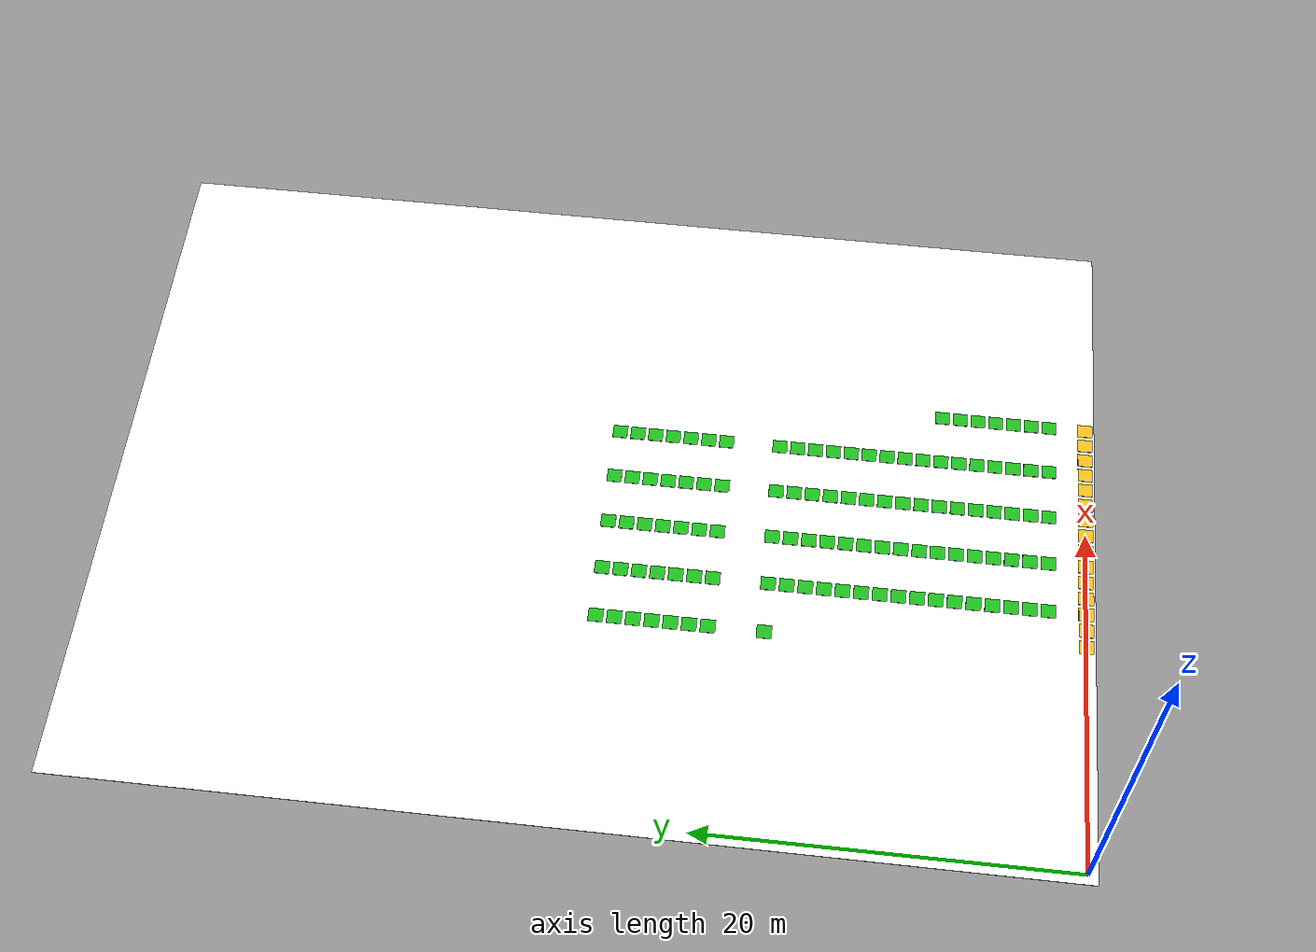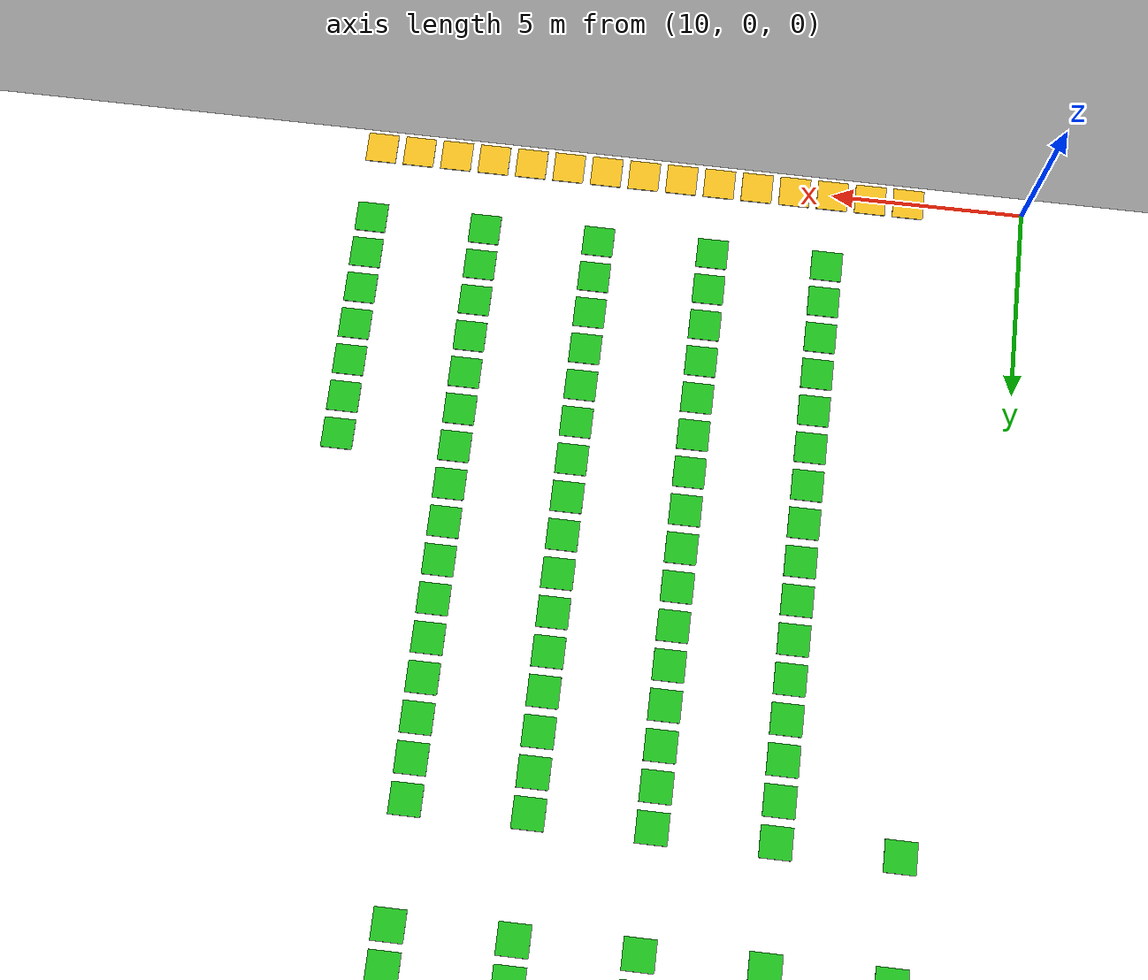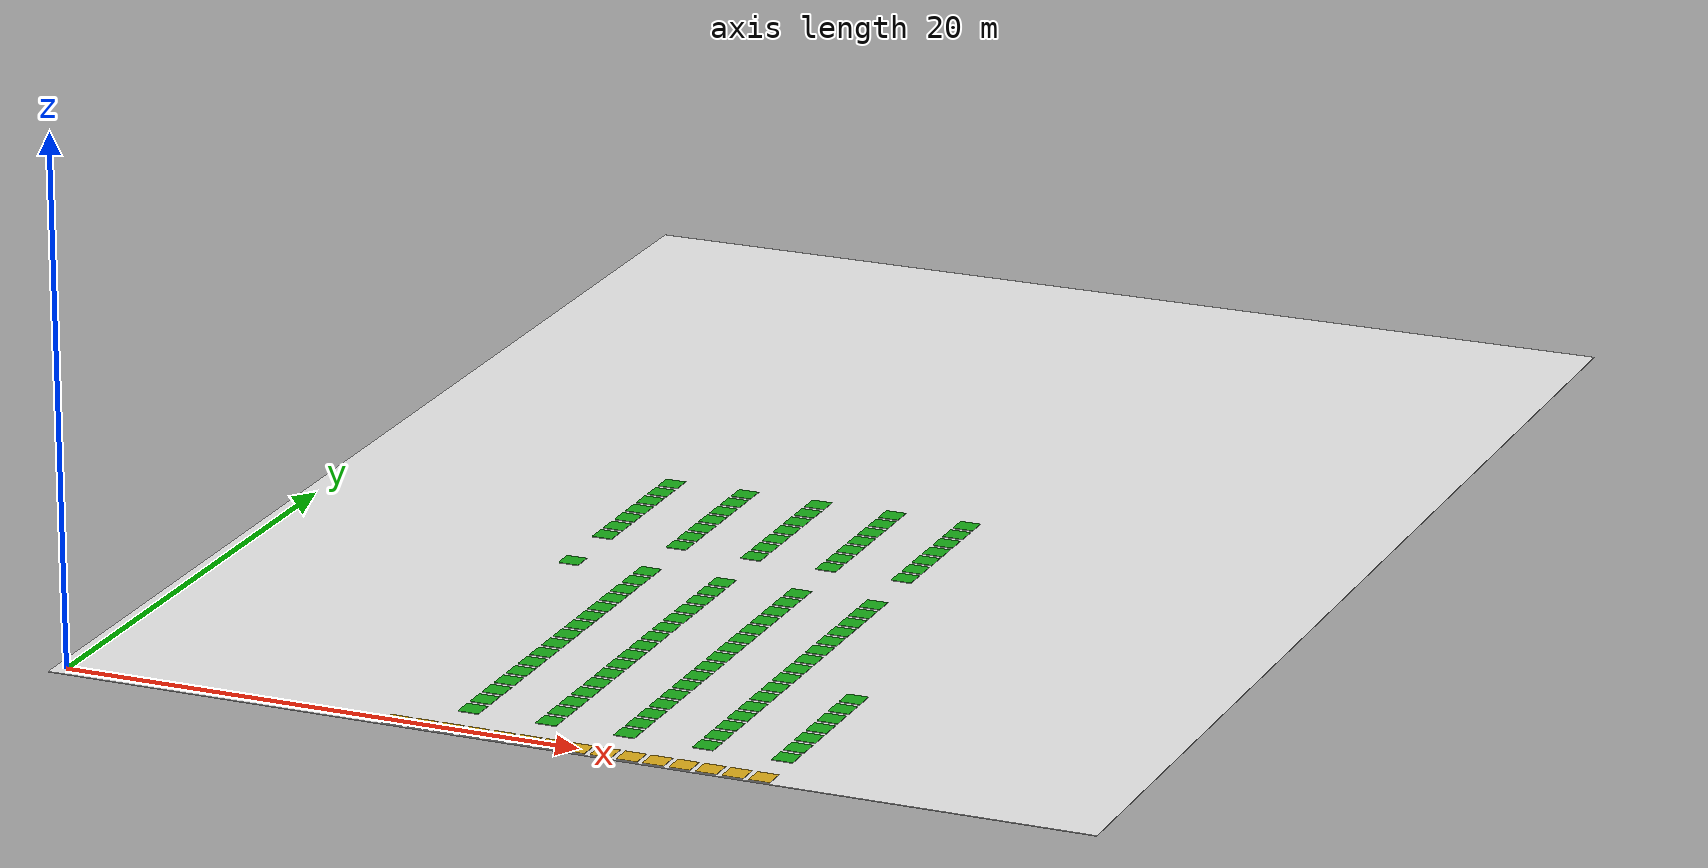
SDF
<sdf version="1.10">
 <world name="warehouse">
  <model name="warehouse_floor">
   <static>true</static>
   <pose>19.5
        26.5
        0.0
        0 0 0</pose>
   <link name="floor_link">
    <visual name="floor_visual">
     <geometry><box><size>40.0
                54.0
                0.02</size></box></geometry>
     <material><ambient>0.95 0.95 0.95 1</ambient><diffuse>0.95 0.95 0.95 1</diffuse></material>
    </visual>
   </link>
  </model>
  <model name="shelf_280">
   <static>true</static>
   <pose>12.0
        26.0
        0.02
        0 0 0</pose>
   <link name="link">
    <visual name="visual">
     <geometry><box><size>0.8
                0.8
                0.02</size></box></geometry>
     <material><ambient>0.10 0.70 0.10 1</ambient><diffuse>0.10 0.70 0.10 1</diffuse></material>
    </visual>
   </link>
  </model>
  <model name="shelf_281">
   <static>true</static>
   <pose>15.0
        26.0
        0.02
        0 0 0</pose>
   <link name="link">
    <visual name="visual">
     <geometry><box><size>0.8
                0.8
                0.02</size></box></geometry>
     <material><ambient>0.10 0.70 0.10 1</ambient><diffuse>0.10 0.70 0.10 1</diffuse></material>
    </visual>
   </link>
  </model>
  <model name="shelf_282">
   <static>true</static>
   <pose>18.0
        26.0
        0.02
        0 0 0</pose>
   <link name="link">
    <visual name="visual">
     <geometry><box><size>0.8
                0.8
                0.02</size></box></geometry>
     <material><ambient>0.10 0.70 0.10 1</ambient><diffuse>0.10 0.70 0.10 1</diffuse></material>
    </visual>
   </link>
  </model>
  <model name="shelf_283">
   <static>true</static>
   <pose>21.0
        26.0
        0.02
        0 0 0</pose>
   <link name="link">
    <visual name="visual">
     <geometry><box><size>0.8
                0.8
                0.02</size></box></geometry>
     <material><ambient>0.10 0.70 0.10 1</ambient><diffuse>0.10 0.70 0.10 1</diffuse></material>
    </visual>
   </link>
  </model>
  <model name="shelf_284">
   <static>true</static>
   <pose>24.0
        26.0
        0.02
        0 0 0</pose>
   <link name="link">
    <visual name="visual">
     <geometry><box><size>0.8
                0.8
                0.02</size></box></geometry>
     <material><ambient>0.10 0.70 0.10 1</ambient><diffuse>0.10 0.70 0.10 1</diffuse></material>
    </visual>
   </link>
  </model>
  <model name="shelf_292">
   <static>true</static>
   <pose>12.0
        25.0
        0.02
        0 0 0</pose>
   <link name="link">
    <visual name="visual">
     <geometry><box><size>0.8
                0.8
                0.02</size></box></geometry>
     <material><ambient>0.10 0.70 0.10 1</ambient><diffuse>0.10 0.70 0.10 1</diffuse></material>
    </visual>
   </link>
  </model>
  <model name="shelf_293">
   <static>true</static>
   <pose>15.0
        25.0
        0.02
        0 0 0</pose>
   <link name="link">
    <visual name="visual">
     <geometry><box><size>0.8
                0.8
                0.02</size></box></geometry>
     <material><ambient>0.10 0.70 0.10 1</ambient><diffuse>0.10 0.70 0.10 1</diffuse></material>
    </visual>
   </link>
  </model>
  <model name="shelf_294">
   <static>true</static>
   <pose>18.0
        25.0
        0.02
        0 0 0</pose>
   <link name="link">
    <visual name="visual">
     <geometry><box><size>0.8
                0.8
                0.02</size></box></geometry>
     <material><ambient>0.10 0.70 0.10 1</ambient><diffuse>0.10 0.70 0.10 1</diffuse></material>
    </visual>
   </link>
  </model>
  <model name="shelf_295">
   <static>true</static>
   <pose>21.0
        25.0
        0.02
        0 0 0</pose>
   <link name="link">
    <visual name="visual">
     <geometry><box><size>0.8
                0.8
                0.02</size></box></geometry>
     <material><ambient>0.10 0.70 0.10 1</ambient><diffuse>0.10 0.70 0.10 1</diffuse></material>
    </visual>
   </link>
  </model>
  <model name="shelf_296">
   <static>true</static>
   <pose>24.0
        25.0
        0.02
        0 0 0</pose>
   <link name="link">
    <visual name="visual">
     <geometry><box><size>0.8
                0.8
                0.02</size></box></geometry>
     <material><ambient>0.10 0.70 0.10 1</ambient><diffuse>0.10 0.70 0.10 1</diffuse></material>
    </visual>
   </link>
  </model>
  <model name="shelf_304">
   <static>true</static>
   <pose>12.0
        24.0
        0.02
        0 0 0</pose>
   <link name="link">
    <visual name="visual">
     <geometry><box><size>0.8
                0.8
                0.02</size></box></geometry>
     <material><ambient>0.10 0.70 0.10 1</ambient><diffuse>0.10 0.70 0.10 1</diffuse></material>
    </visual>
   </link>
  </model>
  <model name="shelf_305">
   <static>true</static>
   <pose>15.0
        24.0
        0.02
        0 0 0</pose>
   <link name="link">
    <visual name="visual">
     <geometry><box><size>0.8
                0.8
                0.02</size></box></geometry>
     <material><ambient>0.10 0.70 0.10 1</ambient><diffuse>0.10 0.70 0.10 1</diffuse></material>
    </visual>
   </link>
  </model>
  <model name="shelf_306">
   <static>true</static>
   <pose>18.0
        24.0
        0.02
        0 0 0</pose>
   <link name="link">
    <visual name="visual">
     <geometry><box><size>0.8
                0.8
                0.02</size></box></geometry>
     <material><ambient>0.10 0.70 0.10 1</ambient><diffuse>0.10 0.70 0.10 1</diffuse></material>
    </visual>
   </link>
  </model>
  <model name="shelf_307">
   <static>true</static>
   <pose>21.0
        24.0
        0.02
        0 0 0</pose>
   <link name="link">
    <visual name="visual">
     <geometry><box><size>0.8
                0.8
                0.02</size></box></geometry>
     <material><ambient>0.10 0.70 0.10 1</ambient><diffuse>0.10 0.70 0.10 1</diffuse></material>
    </visual>
   </link>
  </model>
  <model name="shelf_308">
   <static>true</static>
   <pose>24.0
        24.0
        0.02
        0 0 0</pose>
   <link name="link">
    <visual name="visual">
     <geometry><box><size>0.8
                0.8
                0.02</size></box></geometry>
     <material><ambient>0.10 0.70 0.10 1</ambient><diffuse>0.10 0.70 0.10 1</diffuse></material>
    </visual>
   </link>
  </model>
  <model name="shelf_316">
   <static>true</static>
   <pose>12.0
        23.0
        0.02
        0 0 0</pose>
   <link name="link">
    <visual name="visual">
     <geometry><box><size>0.8
                0.8
                0.02</size></box></geometry>
     <material><ambient>0.10 0.70 0.10 1</ambient><diffuse>0.10 0.70 0.10 1</diffuse></material>
    </visual>
   </link>
  </model>
  <model name="shelf_317">
   <static>true</static>
   <pose>15.0
        23.0
        0.02
        0 0 0</pose>
   <link name="link">
    <visual name="visual">
     <geometry><box><size>0.8
                0.8
                0.02</size></box></geometry>
     <material><ambient>0.10 0.70 0.10 1</ambient><diffuse>0.10 0.70 0.10 1</diffuse></material>
    </visual>
   </link>
  </model>
  <model name="shelf_318">
   <static>true</static>
   <pose>18.0
        23.0
        0.02
        0 0 0</pose>
   <link name="link">
    <visual name="visual">
     <geometry><box><size>0.8
                0.8
                0.02</size></box></geometry>
     <material><ambient>0.10 0.70 0.10 1</ambient><diffuse>0.10 0.70 0.10 1</diffuse></material>
    </visual>
   </link>
  </model>
  <model name="shelf_319">
   <static>true</static>
   <pose>21.0
        23.0
        0.02
        0 0 0</pose>
   <link name="link">
    <visual name="visual">
     <geometry><box><size>0.8
                0.8
                0.02</size></box></geometry>
     <material><ambient>0.10 0.70 0.10 1</ambient><diffuse>0.10 0.70 0.10 1</diffuse></material>
    </visual>
   </link>
  </model>
  <model name="shelf_320">
   <static>true</static>
   <pose>24.0
        23.0
        0.02
        0 0 0</pose>
   <link name="link">
    <visual name="visual">
     <geometry><box><size>0.8
                0.8
                0.02</size></box></geometry>
     <material><ambient>0.10 0.70 0.10 1</ambient><diffuse>0.10 0.70 0.10 1</diffuse></material>
    </visual>
   </link>
  </model>
  <model name="shelf_328">
   <static>true</static>
   <pose>12.0
        22.0
        0.02
        0 0 0</pose>
   <link name="link">
    <visual name="visual">
     <geometry><box><size>0.8
                0.8
                0.02</size></box></geometry>
     <material><ambient>0.10 0.70 0.10 1</ambient><diffuse>0.10 0.70 0.10 1</diffuse></material>
    </visual>
   </link>
  </model>
  <model name="shelf_329">
   <static>true</static>
   <pose>15.0
        22.0
        0.02
        0 0 0</pose>
   <link name="link">
    <visual name="visual">
     <geometry><box><size>0.8
                0.8
                0.02</size></box></geometry>
     <material><ambient>0.10 0.70 0.10 1</ambient><diffuse>0.10 0.70 0.10 1</diffuse></material>
    </visual>
   </link>
  </model>
  <model name="shelf_330">
   <static>true</static>
   <pose>18.0
        22.0
        0.02
        0 0 0</pose>
   <link name="link">
    <visual name="visual">
     <geometry><box><size>0.8
                0.8
                0.02</size></box></geometry>
     <material><ambient>0.10 0.70 0.10 1</ambient><diffuse>0.10 0.70 0.10 1</diffuse></material>
    </visual>
   </link>
  </model>
  <model name="shelf_331">
   <static>true</static>
   <pose>21.0
        22.0
        0.02
        0 0 0</pose>
   <link name="link">
    <visual name="visual">
     <geometry><box><size>0.8
                0.8
                0.02</size></box></geometry>
     <material><ambient>0.10 0.70 0.10 1</ambient><diffuse>0.10 0.70 0.10 1</diffuse></material>
    </visual>
   </link>
  </model>
  <model name="shelf_332">
   <static>true</static>
   <pose>24.0
        22.0
        0.02
        0 0 0</pose>
   <link name="link">
    <visual name="visual">
     <geometry><box><size>0.8
                0.8
                0.02</size></box></geometry>
     <material><ambient>0.10 0.70 0.10 1</ambient><diffuse>0.10 0.70 0.10 1</diffuse></material>
    </visual>
   </link>
  </model>
  <model name="shelf_340">
   <static>true</static>
   <pose>12.0
        21.0
        0.02
        0 0 0</pose>
   <link name="link">
    <visual name="visual">
     <geometry><box><size>0.8
                0.8
                0.02</size></box></geometry>
     <material><ambient>0.10 0.70 0.10 1</ambient><diffuse>0.10 0.70 0.10 1</diffuse></material>
    </visual>
   </link>
  </model>
  <model name="shelf_341">
   <static>true</static>
   <pose>15.0
        21.0
        0.02
        0 0 0</pose>
   <link name="link">
    <visual name="visual">
     <geometry><box><size>0.8
                0.8
                0.02</size></box></geometry>
     <material><ambient>0.10 0.70 0.10 1</ambient><diffuse>0.10 0.70 0.10 1</diffuse></material>
    </visual>
   </link>
  </model>
  <model name="shelf_342">
   <static>true</static>
   <pose>18.0
        21.0
        0.02
        0 0 0</pose>
   <link name="link">
    <visual name="visual">
     <geometry><box><size>0.8
                0.8
                0.02</size></box></geometry>
     <material><ambient>0.10 0.70 0.10 1</ambient><diffuse>0.10 0.70 0.10 1</diffuse></material>
    </visual>
   </link>
  </model>
  <model name="shelf_343">
   <static>true</static>
   <pose>21.0
        21.0
        0.02
        0 0 0</pose>
   <link name="link">
    <visual name="visual">
     <geometry><box><size>0.8
                0.8
                0.02</size></box></geometry>
     <material><ambient>0.10 0.70 0.10 1</ambient><diffuse>0.10 0.70 0.10 1</diffuse></material>
    </visual>
   </link>
  </model>
  <model name="shelf_344">
   <static>true</static>
   <pose>24.0
        21.0
        0.02
        0 0 0</pose>
   <link name="link">
    <visual name="visual">
     <geometry><box><size>0.8
                0.8
                0.02</size></box></geometry>
     <material><ambient>0.10 0.70 0.10 1</ambient><diffuse>0.10 0.70 0.10 1</diffuse></material>
    </visual>
   </link>
  </model>
  <model name="shelf_352">
   <static>true</static>
   <pose>12.0
        20.0
        0.02
        0 0 0</pose>
   <link name="link">
    <visual name="visual">
     <geometry><box><size>0.8
                0.8
                0.02</size></box></geometry>
     <material><ambient>0.10 0.70 0.10 1</ambient><diffuse>0.10 0.70 0.10 1</diffuse></material>
    </visual>
   </link>
  </model>
  <model name="shelf_353">
   <static>true</static>
   <pose>15.0
        20.0
        0.02
        0 0 0</pose>
   <link name="link">
    <visual name="visual">
     <geometry><box><size>0.8
                0.8
                0.02</size></box></geometry>
     <material><ambient>0.10 0.70 0.10 1</ambient><diffuse>0.10 0.70 0.10 1</diffuse></material>
    </visual>
   </link>
  </model>
  <model name="shelf_354">
   <static>true</static>
   <pose>18.0
        20.0
        0.02
        0 0 0</pose>
   <link name="link">
    <visual name="visual">
     <geometry><box><size>0.8
                0.8
                0.02</size></box></geometry>
     <material><ambient>0.10 0.70 0.10 1</ambient><diffuse>0.10 0.70 0.10 1</diffuse></material>
    </visual>
   </link>
  </model>
  <model name="shelf_355">
   <static>true</static>
   <pose>21.0
        20.0
        0.02
        0 0 0</pose>
   <link name="link">
    <visual name="visual">
     <geometry><box><size>0.8
                0.8
                0.02</size></box></geometry>
     <material><ambient>0.10 0.70 0.10 1</ambient><diffuse>0.10 0.70 0.10 1</diffuse></material>
    </visual>
   </link>
  </model>
  <model name="shelf_356">
   <static>true</static>
   <pose>24.0
        20.0
        0.02
        0 0 0</pose>
   <link name="link">
    <visual name="visual">
     <geometry><box><size>0.8
                0.8
                0.02</size></box></geometry>
     <material><ambient>0.10 0.70 0.10 1</ambient><diffuse>0.10 0.70 0.10 1</diffuse></material>
    </visual>
   </link>
  </model>
  <model name="shelf_364">
   <static>true</static>
   <pose>12.0
        17.0
        0.02
        0 0 0</pose>
   <link name="link">
    <visual name="visual">
     <geometry><box><size>0.8
                0.8
                0.02</size></box></geometry>
     <material><ambient>0.10 0.70 0.10 1</ambient><diffuse>0.10 0.70 0.10 1</diffuse></material>
    </visual>
   </link>
  </model>
  <model name="shelf_365">
   <static>true</static>
   <pose>15.0
        17.0
        0.02
        0 0 0</pose>
   <link name="link">
    <visual name="visual">
     <geometry><box><size>0.8
                0.8
                0.02</size></box></geometry>
     <material><ambient>0.10 0.70 0.10 1</ambient><diffuse>0.10 0.70 0.10 1</diffuse></material>
    </visual>
   </link>
  </model>
  <model name="shelf_366">
   <static>true</static>
   <pose>18.0
        17.0
        0.02
        0 0 0</pose>
   <link name="link">
    <visual name="visual">
     <geometry><box><size>0.8
                0.8
                0.02</size></box></geometry>
     <material><ambient>0.10 0.70 0.10 1</ambient><diffuse>0.10 0.70 0.10 1</diffuse></material>
    </visual>
   </link>
  </model>
  <model name="shelf_367">
   <static>true</static>
   <pose>21.0
        17.0
        0.02
        0 0 0</pose>
   <link name="link">
    <visual name="visual">
     <geometry><box><size>0.8
                0.8
                0.02</size></box></geometry>
     <material><ambient>0.10 0.70 0.10 1</ambient><diffuse>0.10 0.70 0.10 1</diffuse></material>
    </visual>
   </link>
  </model>
  <model name="shelf_368">
   <static>true</static>
   <pose>24.0
        17.0
        0.02
        0 0 0</pose>
   <link name="link">
    <visual name="visual">
     <geometry><box><size>0.8
                0.8
                0.02</size></box></geometry>
     <material><ambient>0.10 0.70 0.10 1</ambient><diffuse>0.10 0.70 0.10 1</diffuse></material>
    </visual>
   </link>
  </model>
  <model name="shelf_377">
   <static>true</static>
   <pose>15.0
        16.0
        0.02
        0 0 0</pose>
   <link name="link">
    <visual name="visual">
     <geometry><box><size>0.8
                0.8
                0.02</size></box></geometry>
     <material><ambient>0.10 0.70 0.10 1</ambient><diffuse>0.10 0.70 0.10 1</diffuse></material>
    </visual>
   </link>
  </model>
  <model name="shelf_378">
   <static>true</static>
   <pose>18.0
        16.0
        0.02
        0 0 0</pose>
   <link name="link">
    <visual name="visual">
     <geometry><box><size>0.8
                0.8
                0.02</size></box></geometry>
     <material><ambient>0.10 0.70 0.10 1</ambient><diffuse>0.10 0.70 0.10 1</diffuse></material>
    </visual>
   </link>
  </model>
  <model name="shelf_379">
   <static>true</static>
   <pose>21.0
        16.0
        0.02
        0 0 0</pose>
   <link name="link">
    <visual name="visual">
     <geometry><box><size>0.8
                0.8
                0.02</size></box></geometry>
     <material><ambient>0.10 0.70 0.10 1</ambient><diffuse>0.10 0.70 0.10 1</diffuse></material>
    </visual>
   </link>
  </model>
  <model name="shelf_380">
   <static>true</static>
   <pose>24.0
        16.0
        0.02
        0 0 0</pose>
   <link name="link">
    <visual name="visual">
     <geometry><box><size>0.8
                0.8
                0.02</size></box></geometry>
     <material><ambient>0.10 0.70 0.10 1</ambient><diffuse>0.10 0.70 0.10 1</diffuse></material>
    </visual>
   </link>
  </model>
  <model name="shelf_389">
   <static>true</static>
   <pose>15.0
        15.0
        0.02
        0 0 0</pose>
   <link name="link">
    <visual name="visual">
     <geometry><box><size>0.8
                0.8
                0.02</size></box></geometry>
     <material><ambient>0.10 0.70 0.10 1</ambient><diffuse>0.10 0.70 0.10 1</diffuse></material>
    </visual>
   </link>
  </model>
  <model name="shelf_390">
   <static>true</static>
   <pose>18.0
        15.0
        0.02
        0 0 0</pose>
   <link name="link">
    <visual name="visual">
     <geometry><box><size>0.8
                0.8
                0.02</size></box></geometry>
     <material><ambient>0.10 0.70 0.10 1</ambient><diffuse>0.10 0.70 0.10 1</diffuse></material>
    </visual>
   </link>
  </model>
  <model name="shelf_391">
   <static>true</static>
   <pose>21.0
        15.0
        0.02
        0 0 0</pose>
   <link name="link">
    <visual name="visual">
     <geometry><box><size>0.8
                0.8
                0.02</size></box></geometry>
     <material><ambient>0.10 0.70 0.10 1</ambient><diffuse>0.10 0.70 0.10 1</diffuse></material>
    </visual>
   </link>
  </model>
  <model name="shelf_392">
   <static>true</static>
   <pose>24.0
        15.0
        0.02
        0 0 0</pose>
   <link name="link">
    <visual name="visual">
     <geometry><box><size>0.8
                0.8
                0.02</size></box></geometry>
     <material><ambient>0.10 0.70 0.10 1</ambient><diffuse>0.10 0.70 0.10 1</diffuse></material>
    </visual>
   </link>
  </model>
  <model name="shelf_401">
   <static>true</static>
   <pose>15.0
        14.0
        0.02
        0 0 0</pose>
   <link name="link">
    <visual name="visual">
     <geometry><box><size>0.8
                0.8
                0.02</size></box></geometry>
     <material><ambient>0.10 0.70 0.10 1</ambient><diffuse>0.10 0.70 0.10 1</diffuse></material>
    </visual>
   </link>
  </model>
  <model name="shelf_402">
   <static>true</static>
   <pose>18.0
        14.0
        0.02
        0 0 0</pose>
   <link name="link">
    <visual name="visual">
     <geometry><box><size>0.8
                0.8
                0.02</size></box></geometry>
     <material><ambient>0.10 0.70 0.10 1</ambient><diffuse>0.10 0.70 0.10 1</diffuse></material>
    </visual>
   </link>
  </model>
  <model name="shelf_403">
   <static>true</static>
   <pose>21.0
        14.0
        0.02
        0 0 0</pose>
   <link name="link">
    <visual name="visual">
     <geometry><box><size>0.8
                0.8
                0.02</size></box></geometry>
     <material><ambient>0.10 0.70 0.10 1</ambient><diffuse>0.10 0.70 0.10 1</diffuse></material>
    </visual>
   </link>
  </model>
  <model name="shelf_404">
   <static>true</static>
   <pose>24.0
        14.0
        0.02
        0 0 0</pose>
   <link name="link">
    <visual name="visual">
     <geometry><box><size>0.8
                0.8
                0.02</size></box></geometry>
     <material><ambient>0.10 0.70 0.10 1</ambient><diffuse>0.10 0.70 0.10 1</diffuse></material>
    </visual>
   </link>
  </model>
  <model name="shelf_413">
   <static>true</static>
   <pose>15.0
        13.0
        0.02
        0 0 0</pose>
   <link name="link">
    <visual name="visual">
     <geometry><box><size>0.8
                0.8
                0.02</size></box></geometry>
     <material><ambient>0.10 0.70 0.10 1</ambient><diffuse>0.10 0.70 0.10 1</diffuse></material>
    </visual>
   </link>
  </model>
  <model name="shelf_414">
   <static>true</static>
   <pose>18.0
        13.0
        0.02
        0 0 0</pose>
   <link name="link">
    <visual name="visual">
     <geometry><box><size>0.8
                0.8
                0.02</size></box></geometry>
     <material><ambient>0.10 0.70 0.10 1</ambient><diffuse>0.10 0.70 0.10 1</diffuse></material>
    </visual>
   </link>
  </model>
  <model name="shelf_415">
   <static>true</static>
   <pose>21.0
        13.0
        0.02
        0 0 0</pose>
   <link name="link">
    <visual name="visual">
     <geometry><box><size>0.8
                0.8
                0.02</size></box></geometry>
     <material><ambient>0.10 0.70 0.10 1</ambient><diffuse>0.10 0.70 0.10 1</diffuse></material>
    </visual>
   </link>
  </model>
  <model name="shelf_416">
   <static>true</static>
   <pose>24.0
        13.0
        0.02
        0 0 0</pose>
   <link name="link">
    <visual name="visual">
     <geometry><box><size>0.8
                0.8
                0.02</size></box></geometry>
     <material><ambient>0.10 0.70 0.10 1</ambient><diffuse>0.10 0.70 0.10 1</diffuse></material>
    </visual>
   </link>
  </model>
  <model name="shelf_425">
   <static>true</static>
   <pose>15.0
        12.0
        0.02
        0 0 0</pose>
   <link name="link">
    <visual name="visual">
     <geometry><box><size>0.8
                0.8
                0.02</size></box></geometry>
     <material><ambient>0.10 0.70 0.10 1</ambient><diffuse>0.10 0.70 0.10 1</diffuse></material>
    </visual>
   </link>
  </model>
  <model name="shelf_426">
   <static>true</static>
   <pose>18.0
        12.0
        0.02
        0 0 0</pose>
   <link name="link">
    <visual name="visual">
     <geometry><box><size>0.8
                0.8
                0.02</size></box></geometry>
     <material><ambient>0.10 0.70 0.10 1</ambient><diffuse>0.10 0.70 0.10 1</diffuse></material>
    </visual>
   </link>
  </model>
  <model name="shelf_427">
   <static>true</static>
   <pose>21.0
        12.0
        0.02
        0 0 0</pose>
   <link name="link">
    <visual name="visual">
     <geometry><box><size>0.8
                0.8
                0.02</size></box></geometry>
     <material><ambient>0.10 0.70 0.10 1</ambient><diffuse>0.10 0.70 0.10 1</diffuse></material>
    </visual>
   </link>
  </model>
  <model name="shelf_428">
   <static>true</static>
   <pose>24.0
        12.0
        0.02
        0 0 0</pose>
   <link name="link">
    <visual name="visual">
     <geometry><box><size>0.8
                0.8
                0.02</size></box></geometry>
     <material><ambient>0.10 0.70 0.10 1</ambient><diffuse>0.10 0.70 0.10 1</diffuse></material>
    </visual>
   </link>
  </model>
  <model name="shelf_437">
   <static>true</static>
   <pose>15.0
        11.0
        0.02
        0 0 0</pose>
   <link name="link">
    <visual name="visual">
     <geometry><box><size>0.8
                0.8
                0.02</size></box></geometry>
     <material><ambient>0.10 0.70 0.10 1</ambient><diffuse>0.10 0.70 0.10 1</diffuse></material>
    </visual>
   </link>
  </model>
  <model name="shelf_438">
   <static>true</static>
   <pose>18.0
        11.0
        0.02
        0 0 0</pose>
   <link name="link">
    <visual name="visual">
     <geometry><box><size>0.8
                0.8
                0.02</size></box></geometry>
     <material><ambient>0.10 0.70 0.10 1</ambient><diffuse>0.10 0.70 0.10 1</diffuse></material>
    </visual>
   </link>
  </model>
  <model name="shelf_439">
   <static>true</static>
   <pose>21.0
        11.0
        0.02
        0 0 0</pose>
   <link name="link">
    <visual name="visual">
     <geometry><box><size>0.8
                0.8
                0.02</size></box></geometry>
     <material><ambient>0.10 0.70 0.10 1</ambient><diffuse>0.10 0.70 0.10 1</diffuse></material>
    </visual>
   </link>
  </model>
  <model name="shelf_440">
   <static>true</static>
   <pose>24.0
        11.0
        0.02
        0 0 0</pose>
   <link name="link">
    <visual name="visual">
     <geometry><box><size>0.8
                0.8
                0.02</size></box></geometry>
     <material><ambient>0.10 0.70 0.10 1</ambient><diffuse>0.10 0.70 0.10 1</diffuse></material>
    </visual>
   </link>
  </model>
  <model name="shelf_449">
   <static>true</static>
   <pose>15.0
        10.0
        0.02
        0 0 0</pose>
   <link name="link">
    <visual name="visual">
     <geometry><box><size>0.8
                0.8
                0.02</size></box></geometry>
     <material><ambient>0.10 0.70 0.10 1</ambient><diffuse>0.10 0.70 0.10 1</diffuse></material>
    </visual>
   </link>
  </model>
  <model name="shelf_450">
   <static>true</static>
   <pose>18.0
        10.0
        0.02
        0 0 0</pose>
   <link name="link">
    <visual name="visual">
     <geometry><box><size>0.8
                0.8
                0.02</size></box></geometry>
     <material><ambient>0.10 0.70 0.10 1</ambient><diffuse>0.10 0.70 0.10 1</diffuse></material>
    </visual>
   </link>
  </model>
  <model name="shelf_451">
   <static>true</static>
   <pose>21.0
        10.0
        0.02
        0 0 0</pose>
   <link name="link">
    <visual name="visual">
     <geometry><box><size>0.8
                0.8
                0.02</size></box></geometry>
     <material><ambient>0.10 0.70 0.10 1</ambient><diffuse>0.10 0.70 0.10 1</diffuse></material>
    </visual>
   </link>
  </model>
  <model name="shelf_452">
   <static>true</static>
   <pose>24.0
        10.0
        0.02
        0 0 0</pose>
   <link name="link">
    <visual name="visual">
     <geometry><box><size>0.8
                0.8
                0.02</size></box></geometry>
     <material><ambient>0.10 0.70 0.10 1</ambient><diffuse>0.10 0.70 0.10 1</diffuse></material>
    </visual>
   </link>
  </model>
  <model name="shelf_461">
   <static>true</static>
   <pose>15.0
        9.0
        0.02
        0 0 0</pose>
   <link name="link">
    <visual name="visual">
     <geometry><box><size>0.8
                0.8
                0.02</size></box></geometry>
     <material><ambient>0.10 0.70 0.10 1</ambient><diffuse>0.10 0.70 0.10 1</diffuse></material>
    </visual>
   </link>
  </model>
  <model name="shelf_462">
   <static>true</static>
   <pose>18.0
        9.0
        0.02
        0 0 0</pose>
   <link name="link">
    <visual name="visual">
     <geometry><box><size>0.8
                0.8
                0.02</size></box></geometry>
     <material><ambient>0.10 0.70 0.10 1</ambient><diffuse>0.10 0.70 0.10 1</diffuse></material>
    </visual>
   </link>
  </model>
  <model name="shelf_463">
   <static>true</static>
   <pose>21.0
        9.0
        0.02
        0 0 0</pose>
   <link name="link">
    <visual name="visual">
     <geometry><box><size>0.8
                0.8
                0.02</size></box></geometry>
     <material><ambient>0.10 0.70 0.10 1</ambient><diffuse>0.10 0.70 0.10 1</diffuse></material>
    </visual>
   </link>
  </model>
  <model name="shelf_464">
   <static>true</static>
   <pose>24.0
        9.0
        0.02
        0 0 0</pose>
   <link name="link">
    <visual name="visual">
     <geometry><box><size>0.8
                0.8
                0.02</size></box></geometry>
     <material><ambient>0.10 0.70 0.10 1</ambient><diffuse>0.10 0.70 0.10 1</diffuse></material>
    </visual>
   </link>
  </model>
  <model name="shelf_473">
   <static>true</static>
   <pose>15.0
        8.0
        0.02
        0 0 0</pose>
   <link name="link">
    <visual name="visual">
     <geometry><box><size>0.8
                0.8
                0.02</size></box></geometry>
     <material><ambient>0.10 0.70 0.10 1</ambient><diffuse>0.10 0.70 0.10 1</diffuse></material>
    </visual>
   </link>
  </model>
  <model name="shelf_474">
   <static>true</static>
   <pose>18.0
        8.0
        0.02
        0 0 0</pose>
   <link name="link">
    <visual name="visual">
     <geometry><box><size>0.8
                0.8
                0.02</size></box></geometry>
     <material><ambient>0.10 0.70 0.10 1</ambient><diffuse>0.10 0.70 0.10 1</diffuse></material>
    </visual>
   </link>
  </model>
  <model name="shelf_475">
   <static>true</static>
   <pose>21.0
        8.0
        0.02
        0 0 0</pose>
   <link name="link">
    <visual name="visual">
     <geometry><box><size>0.8
                0.8
                0.02</size></box></geometry>
     <material><ambient>0.10 0.70 0.10 1</ambient><diffuse>0.10 0.70 0.10 1</diffuse></material>
    </visual>
   </link>
  </model>
  <model name="shelf_476">
   <static>true</static>
   <pose>24.0
        8.0
        0.02
        0 0 0</pose>
   <link name="link">
    <visual name="visual">
     <geometry><box><size>0.8
                0.8
                0.02</size></box></geometry>
     <material><ambient>0.10 0.70 0.10 1</ambient><diffuse>0.10 0.70 0.10 1</diffuse></material>
    </visual>
   </link>
  </model>
  <model name="shelf_477">
   <static>true</static>
   <pose>27.0
        8.0
        0.02
        0 0 0</pose>
   <link name="link">
    <visual name="visual">
     <geometry><box><size>0.8
                0.8
                0.02</size></box></geometry>
     <material><ambient>0.10 0.70 0.10 1</ambient><diffuse>0.10 0.70 0.10 1</diffuse></material>
    </visual>
   </link>
  </model>
  <model name="shelf_485">
   <static>true</static>
   <pose>15.0
        7.0
        0.02
        0 0 0</pose>
   <link name="link">
    <visual name="visual">
     <geometry><box><size>0.8
                0.8
                0.02</size></box></geometry>
     <material><ambient>0.10 0.70 0.10 1</ambient><diffuse>0.10 0.70 0.10 1</diffuse></material>
    </visual>
   </link>
  </model>
  <model name="shelf_486">
   <static>true</static>
   <pose>18.0
        7.0
        0.02
        0 0 0</pose>
   <link name="link">
    <visual name="visual">
     <geometry><box><size>0.8
                0.8
                0.02</size></box></geometry>
     <material><ambient>0.10 0.70 0.10 1</ambient><diffuse>0.10 0.70 0.10 1</diffuse></material>
    </visual>
   </link>
  </model>
  <model name="shelf_487">
   <static>true</static>
   <pose>21.0
        7.0
        0.02
        0 0 0</pose>
   <link name="link">
    <visual name="visual">
     <geometry><box><size>0.8
                0.8
                0.02</size></box></geometry>
     <material><ambient>0.10 0.70 0.10 1</ambient><diffuse>0.10 0.70 0.10 1</diffuse></material>
    </visual>
   </link>
  </model>
  <model name="shelf_488">
   <static>true</static>
   <pose>24.0
        7.0
        0.02
        0 0 0</pose>
   <link name="link">
    <visual name="visual">
     <geometry><box><size>0.8
                0.8
                0.02</size></box></geometry>
     <material><ambient>0.10 0.70 0.10 1</ambient><diffuse>0.10 0.70 0.10 1</diffuse></material>
    </visual>
   </link>
  </model>
  <model name="shelf_489">
   <static>true</static>
   <pose>27.0
        7.0
        0.02
        0 0 0</pose>
   <link name="link">
    <visual name="visual">
     <geometry><box><size>0.8
                0.8
                0.02</size></box></geometry>
     <material><ambient>0.10 0.70 0.10 1</ambient><diffuse>0.10 0.70 0.10 1</diffuse></material>
    </visual>
   </link>
  </model>
  <model name="shelf_497">
   <static>true</static>
   <pose>15.0
        6.0
        0.02
        0 0 0</pose>
   <link name="link">
    <visual name="visual">
     <geometry><box><size>0.8
                0.8
                0.02</size></box></geometry>
     <material><ambient>0.10 0.70 0.10 1</ambient><diffuse>0.10 0.70 0.10 1</diffuse></material>
    </visual>
   </link>
  </model>
  <model name="shelf_498">
   <static>true</static>
   <pose>18.0
        6.0
        0.02
        0 0 0</pose>
   <link name="link">
    <visual name="visual">
     <geometry><box><size>0.8
                0.8
                0.02</size></box></geometry>
     <material><ambient>0.10 0.70 0.10 1</ambient><diffuse>0.10 0.70 0.10 1</diffuse></material>
    </visual>
   </link>
  </model>
  <model name="shelf_499">
   <static>true</static>
   <pose>21.0
        6.0
        0.02
        0 0 0</pose>
   <link name="link">
    <visual name="visual">
     <geometry><box><size>0.8
                0.8
                0.02</size></box></geometry>
     <material><ambient>0.10 0.70 0.10 1</ambient><diffuse>0.10 0.70 0.10 1</diffuse></material>
    </visual>
   </link>
  </model>
  <model name="shelf_500">
   <static>true</static>
   <pose>24.0
        6.0
        0.02
        0 0 0</pose>
   <link name="link">
    <visual name="visual">
     <geometry><box><size>0.8
                0.8
                0.02</size></box></geometry>
     <material><ambient>0.10 0.70 0.10 1</ambient><diffuse>0.10 0.70 0.10 1</diffuse></material>
    </visual>
   </link>
  </model>
  <model name="shelf_501">
   <static>true</static>
   <pose>27.0
        6.0
        0.02
        0 0 0</pose>
   <link name="link">
    <visual name="visual">
     <geometry><box><size>0.8
                0.8
                0.02</size></box></geometry>
     <material><ambient>0.10 0.70 0.10 1</ambient><diffuse>0.10 0.70 0.10 1</diffuse></material>
    </visual>
   </link>
  </model>
  <model name="shelf_509">
   <static>true</static>
   <pose>15.0
        5.0
        0.02
        0 0 0</pose>
   <link name="link">
    <visual name="visual">
     <geometry><box><size>0.8
                0.8
                0.02</size></box></geometry>
     <material><ambient>0.10 0.70 0.10 1</ambient><diffuse>0.10 0.70 0.10 1</diffuse></material>
    </visual>
   </link>
  </model>
  <model name="shelf_510">
   <static>true</static>
   <pose>18.0
        5.0
        0.02
        0 0 0</pose>
   <link name="link">
    <visual name="visual">
     <geometry><box><size>0.8
                0.8
                0.02</size></box></geometry>
     <material><ambient>0.10 0.70 0.10 1</ambient><diffuse>0.10 0.70 0.10 1</diffuse></material>
    </visual>
   </link>
  </model>
  <model name="shelf_511">
   <static>true</static>
   <pose>21.0
        5.0
        0.02
        0 0 0</pose>
   <link name="link">
    <visual name="visual">
     <geometry><box><size>0.8
                0.8
                0.02</size></box></geometry>
     <material><ambient>0.10 0.70 0.10 1</ambient><diffuse>0.10 0.70 0.10 1</diffuse></material>
    </visual>
   </link>
  </model>
  <model name="shelf_512">
   <static>true</static>
   <pose>24.0
        5.0
        0.02
        0 0 0</pose>
   <link name="link">
    <visual name="visual">
     <geometry><box><size>0.8
                0.8
                0.02</size></box></geometry>
     <material><ambient>0.10 0.70 0.10 1</ambient><diffuse>0.10 0.70 0.10 1</diffuse></material>
    </visual>
   </link>
  </model>
  <model name="shelf_513">
   <static>true</static>
   <pose>27.0
        5.0
        0.02
        0 0 0</pose>
   <link name="link">
    <visual name="visual">
     <geometry><box><size>0.8
                0.8
                0.02</size></box></geometry>
     <material><ambient>0.10 0.70 0.10 1</ambient><diffuse>0.10 0.70 0.10 1</diffuse></material>
    </visual>
   </link>
  </model>
  <model name="shelf_521">
   <static>true</static>
   <pose>15.0
        4.0
        0.02
        0 0 0</pose>
   <link name="link">
    <visual name="visual">
     <geometry><box><size>0.8
                0.8
                0.02</size></box></geometry>
     <material><ambient>0.10 0.70 0.10 1</ambient><diffuse>0.10 0.70 0.10 1</diffuse></material>
    </visual>
   </link>
  </model>
  <model name="shelf_522">
   <static>true</static>
   <pose>18.0
        4.0
        0.02
        0 0 0</pose>
   <link name="link">
    <visual name="visual">
     <geometry><box><size>0.8
                0.8
                0.02</size></box></geometry>
     <material><ambient>0.10 0.70 0.10 1</ambient><diffuse>0.10 0.70 0.10 1</diffuse></material>
    </visual>
   </link>
  </model>
  <model name="shelf_523">
   <static>true</static>
   <pose>21.0
        4.0
        0.02
        0 0 0</pose>
   <link name="link">
    <visual name="visual">
     <geometry><box><size>0.8
                0.8
                0.02</size></box></geometry>
     <material><ambient>0.10 0.70 0.10 1</ambient><diffuse>0.10 0.70 0.10 1</diffuse></material>
    </visual>
   </link>
  </model>
  <model name="shelf_524">
   <static>true</static>
   <pose>24.0
        4.0
        0.02
        0 0 0</pose>
   <link name="link">
    <visual name="visual">
     <geometry><box><size>0.8
                0.8
                0.02</size></box></geometry>
     <material><ambient>0.10 0.70 0.10 1</ambient><diffuse>0.10 0.70 0.10 1</diffuse></material>
    </visual>
   </link>
  </model>
  <model name="shelf_525">
   <static>true</static>
   <pose>27.0
        4.0
        0.02
        0 0 0</pose>
   <link name="link">
    <visual name="visual">
     <geometry><box><size>0.8
                0.8
                0.02</size></box></geometry>
     <material><ambient>0.10 0.70 0.10 1</ambient><diffuse>0.10 0.70 0.10 1</diffuse></material>
    </visual>
   </link>
  </model>
  <model name="shelf_533">
   <static>true</static>
   <pose>15.0
        3.0
        0.02
        0 0 0</pose>
   <link name="link">
    <visual name="visual">
     <geometry><box><size>0.8
                0.8
                0.02</size></box></geometry>
     <material><ambient>0.10 0.70 0.10 1</ambient><diffuse>0.10 0.70 0.10 1</diffuse></material>
    </visual>
   </link>
  </model>
  <model name="shelf_534">
   <static>true</static>
   <pose>18.0
        3.0
        0.02
        0 0 0</pose>
   <link name="link">
    <visual name="visual">
     <geometry><box><size>0.8
                0.8
                0.02</size></box></geometry>
     <material><ambient>0.10 0.70 0.10 1</ambient><diffuse>0.10 0.70 0.10 1</diffuse></material>
    </visual>
   </link>
  </model>
  <model name="shelf_535">
   <static>true</static>
   <pose>21.0
        3.0
        0.02
        0 0 0</pose>
   <link name="link">
    <visual name="visual">
     <geometry><box><size>0.8
                0.8
                0.02</size></box></geometry>
     <material><ambient>0.10 0.70 0.10 1</ambient><diffuse>0.10 0.70 0.10 1</diffuse></material>
    </visual>
   </link>
  </model>
  <model name="shelf_536">
   <static>true</static>
   <pose>24.0
        3.0
        0.02
        0 0 0</pose>
   <link name="link">
    <visual name="visual">
     <geometry><box><size>0.8
                0.8
                0.02</size></box></geometry>
     <material><ambient>0.10 0.70 0.10 1</ambient><diffuse>0.10 0.70 0.10 1</diffuse></material>
    </visual>
   </link>
  </model>
  <model name="shelf_537">
   <static>true</static>
   <pose>27.0
        3.0
        0.02
        0 0 0</pose>
   <link name="link">
    <visual name="visual">
     <geometry><box><size>0.8
                0.8
                0.02</size></box></geometry>
     <material><ambient>0.10 0.70 0.10 1</ambient><diffuse>0.10 0.70 0.10 1</diffuse></material>
    </visual>
   </link>
  </model>
  <model name="shelf_545">
   <static>true</static>
   <pose>15.0
        2.0
        0.02
        0 0 0</pose>
   <link name="link">
    <visual name="visual">
     <geometry><box><size>0.8
                0.8
                0.02</size></box></geometry>
     <material><ambient>0.10 0.70 0.10 1</ambient><diffuse>0.10 0.70 0.10 1</diffuse></material>
    </visual>
   </link>
  </model>
  <model name="shelf_546">
   <static>true</static>
   <pose>18.0
        2.0
        0.02
        0 0 0</pose>
   <link name="link">
    <visual name="visual">
     <geometry><box><size>0.8
                0.8
                0.02</size></box></geometry>
     <material><ambient>0.10 0.70 0.10 1</ambient><diffuse>0.10 0.70 0.10 1</diffuse></material>
    </visual>
   </link>
  </model>
  <model name="shelf_547">
   <static>true</static>
   <pose>21.0
        2.0
        0.02
        0 0 0</pose>
   <link name="link">
    <visual name="visual">
     <geometry><box><size>0.8
                0.8
                0.02</size></box></geometry>
     <material><ambient>0.10 0.70 0.10 1</ambient><diffuse>0.10 0.70 0.10 1</diffuse></material>
    </visual>
   </link>
  </model>
  <model name="shelf_548">
   <static>true</static>
   <pose>24.0
        2.0
        0.02
        0 0 0</pose>
   <link name="link">
    <visual name="visual">
     <geometry><box><size>0.8
                0.8
                0.02</size></box></geometry>
     <material><ambient>0.10 0.70 0.10 1</ambient><diffuse>0.10 0.70 0.10 1</diffuse></material>
    </visual>
   </link>
  </model>
  <model name="shelf_549">
   <static>true</static>
   <pose>27.0
        2.0
        0.02
        0 0 0</pose>
   <link name="link">
    <visual name="visual">
     <geometry><box><size>0.8
                0.8
                0.02</size></box></geometry>
     <material><ambient>0.10 0.70 0.10 1</ambient><diffuse>0.10 0.70 0.10 1</diffuse></material>
    </visual>
   </link>
  </model>
  <model name="dropoff_012">
   <static>true</static>
   <pose>13.0
        0.0
        0.02
        0 0 0</pose>
   <link name="link">
    <visual name="visual">
     <geometry><box><size>0.8
                0.8
                0.02</size></box></geometry>
     <material><ambient>0.90 0.70 0.10 1</ambient><diffuse>0.90 0.70 0.10 1</diffuse></material>
    </visual>
   </link>
  </model>
  <model name="dropoff_013">
   <static>true</static>
   <pose>14.0
        0.0
        0.02
        0 0 0</pose>
   <link name="link">
    <visual name="visual">
     <geometry><box><size>0.8
                0.8
                0.02</size></box></geometry>
     <material><ambient>0.90 0.70 0.10 1</ambient><diffuse>0.90 0.70 0.10 1</diffuse></material>
    </visual>
   </link>
  </model>
  <model name="dropoff_014">
   <static>true</static>
   <pose>15.0
        0.0
        0.02
        0 0 0</pose>
   <link name="link">
    <visual name="visual">
     <geometry><box><size>0.8
                0.8
                0.02</size></box></geometry>
     <material><ambient>0.90 0.70 0.10 1</ambient><diffuse>0.90 0.70 0.10 1</diffuse></material>
    </visual>
   </link>
  </model>
  <model name="dropoff_015">
   <static>true</static>
   <pose>16.0
        0.0
        0.02
        0 0 0</pose>
   <link name="link">
    <visual name="visual">
     <geometry><box><size>0.8
                0.8
                0.02</size></box></geometry>
     <material><ambient>0.90 0.70 0.10 1</ambient><diffuse>0.90 0.70 0.10 1</diffuse></material>
    </visual>
   </link>
  </model>
  <model name="dropoff_016">
   <static>true</static>
   <pose>17.0
        0.0
        0.02
        0 0 0</pose>
   <link name="link">
    <visual name="visual">
     <geometry><box><size>0.8
                0.8
                0.02</size></box></geometry>
     <material><ambient>0.90 0.70 0.10 1</ambient><diffuse>0.90 0.70 0.10 1</diffuse></material>
    </visual>
   </link>
  </model>
  <model name="dropoff_017">
   <static>true</static>
   <pose>18.0
        0.0
        0.02
        0 0 0</pose>
   <link name="link">
    <visual name="visual">
     <geometry><box><size>0.8
                0.8
                0.02</size></box></geometry>
     <material><ambient>0.90 0.70 0.10 1</ambient><diffuse>0.90 0.70 0.10 1</diffuse></material>
    </visual>
   </link>
  </model>
  <model name="dropoff_018">
   <static>true</static>
   <pose>19.0
        0.0
        0.02
        0 0 0</pose>
   <link name="link">
    <visual name="visual">
     <geometry><box><size>0.8
                0.8
                0.02</size></box></geometry>
     <material><ambient>0.90 0.70 0.10 1</ambient><diffuse>0.90 0.70 0.10 1</diffuse></material>
    </visual>
   </link>
  </model>
  <model name="dropoff_019">
   <static>true</static>
   <pose>20.0
        0.0
        0.02
        0 0 0</pose>
   <link name="link">
    <visual name="visual">
     <geometry><box><size>0.8
                0.8
                0.02</size></box></geometry>
     <material><ambient>0.90 0.70 0.10 1</ambient><diffuse>0.90 0.70 0.10 1</diffuse></material>
    </visual>
   </link>
  </model>
  <model name="dropoff_020">
   <static>true</static>
   <pose>21.0
        0.0
        0.02
        0 0 0</pose>
   <link name="link">
    <visual name="visual">
     <geometry><box><size>0.8
                0.8
                0.02</size></box></geometry>
     <material><ambient>0.90 0.70 0.10 1</ambient><diffuse>0.90 0.70 0.10 1</diffuse></material>
    </visual>
   </link>
  </model>
  <model name="dropoff_021">
   <static>true</static>
   <pose>22.0
        0.0
        0.02
        0 0 0</pose>
   <link name="link">
    <visual name="visual">
     <geometry><box><size>0.8
                0.8
                0.02</size></box></geometry>
     <material><ambient>0.90 0.70 0.10 1</ambient><diffuse>0.90 0.70 0.10 1</diffuse></material>
    </visual>
   </link>
  </model>
  <model name="dropoff_022">
   <static>true</static>
   <pose>23.0
        0.0
        0.02
        0 0 0</pose>
   <link name="link">
    <visual name="visual">
     <geometry><box><size>0.8
                0.8
                0.02</size></box></geometry>
     <material><ambient>0.90 0.70 0.10 1</ambient><diffuse>0.90 0.70 0.10 1</diffuse></material>
    </visual>
   </link>
  </model>
  <model name="dropoff_023">
   <static>true</static>
   <pose>24.0
        0.0
        0.02
        0 0 0</pose>
   <link name="link">
    <visual name="visual">
     <geometry><box><size>0.8
                0.8
                0.02</size></box></geometry>
     <material><ambient>0.90 0.70 0.10 1</ambient><diffuse>0.90 0.70 0.10 1</diffuse></material>
    </visual>
   </link>
  </model>
  <model name="dropoff_024">
   <static>true</static>
   <pose>25.0
        0.0
        0.02
        0 0 0</pose>
   <link name="link">
    <visual name="visual">
     <geometry><box><size>0.8
                0.8
                0.02</size></box></geometry>
     <material><ambient>0.90 0.70 0.10 1</ambient><diffuse>0.90 0.70 0.10 1</diffuse></material>
    </visual>
   </link>
  </model>
  <model name="dropoff_025">
   <static>true</static>
   <pose>26.0
        0.0
        0.02
        0 0 0</pose>
   <link name="link">
    <visual name="visual">
     <geometry><box><size>0.8
                0.8
                0.02</size></box></geometry>
     <material><ambient>0.90 0.70 0.10 1</ambient><diffuse>0.90 0.70 0.10 1</diffuse></material>
    </visual>
   </link>
  </model>
  <model name="dropoff_026">
   <static>true</static>
   <pose>27.0
        0.0
        0.02
        0 0 0</pose>
   <link name="link">
    <visual name="visual">
     <geometry><box><size>0.8
                0.8
                0.02</size></box></geometry>
     <material><ambient>0.90 0.70 0.10 1</ambient><diffuse>0.90 0.70 0.10 1</diffuse></material>
    </visual>
   </link>
  </model>
 </world>
</sdf>
